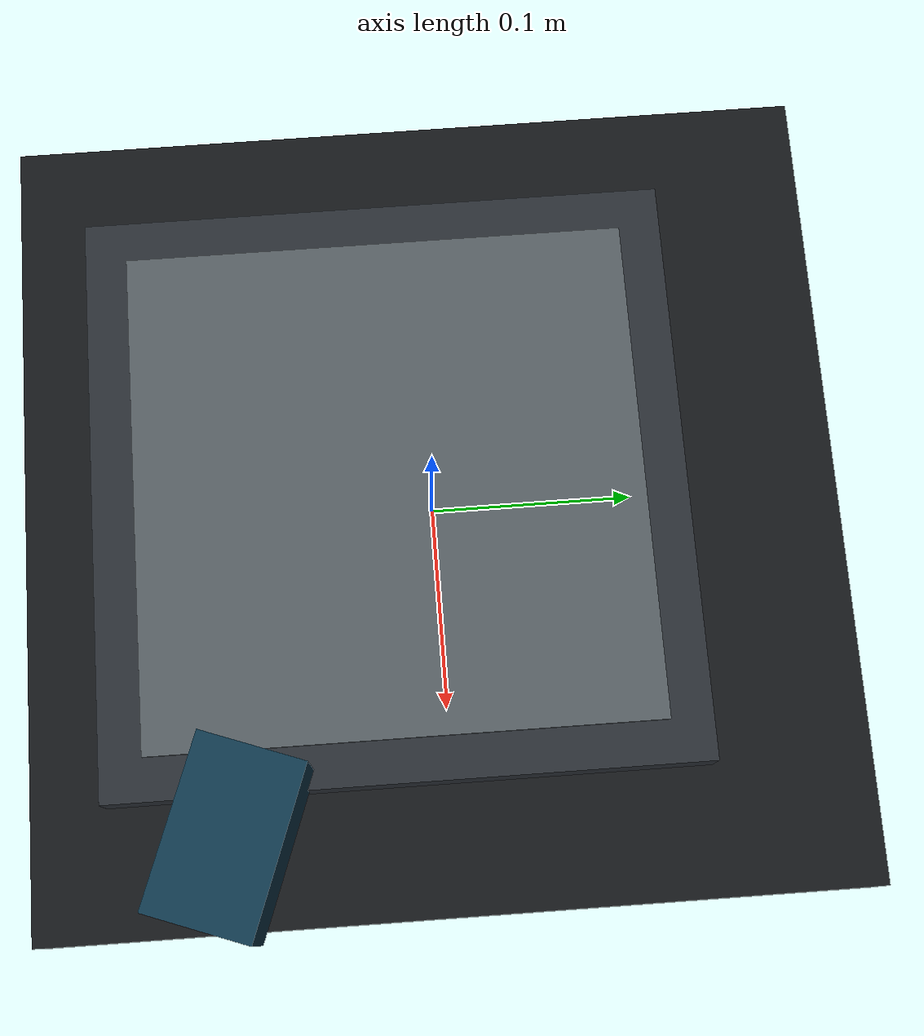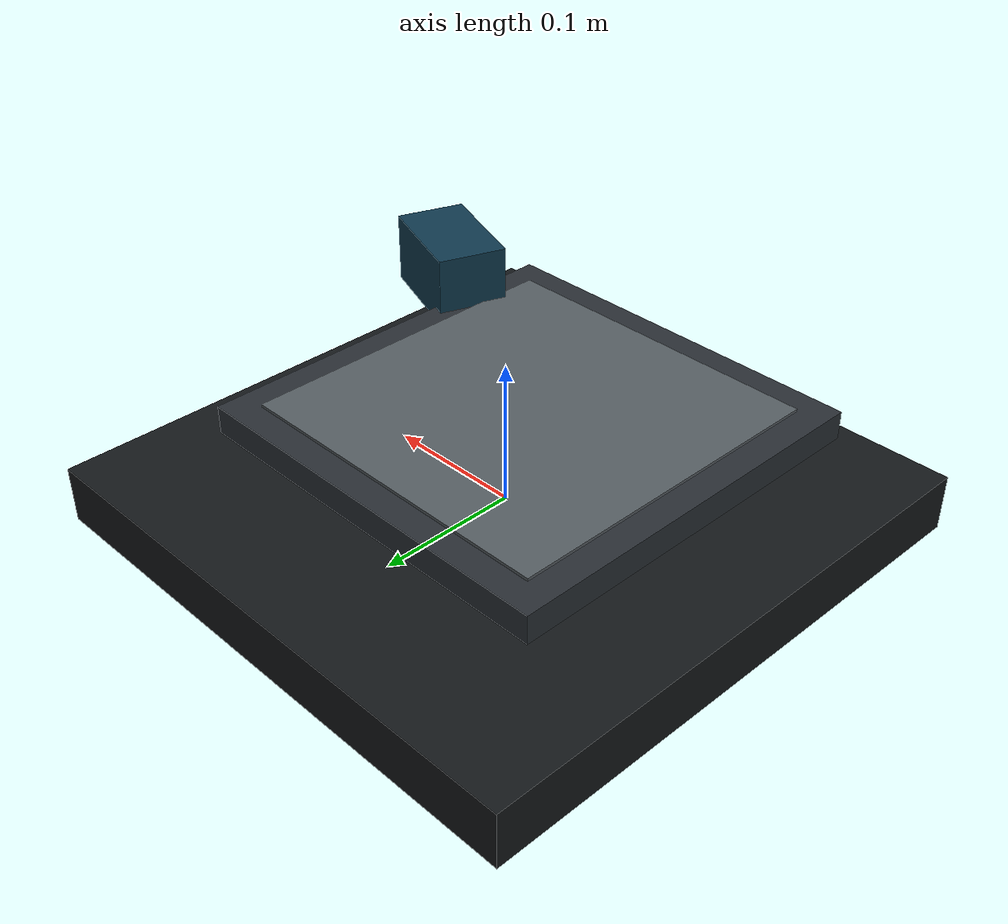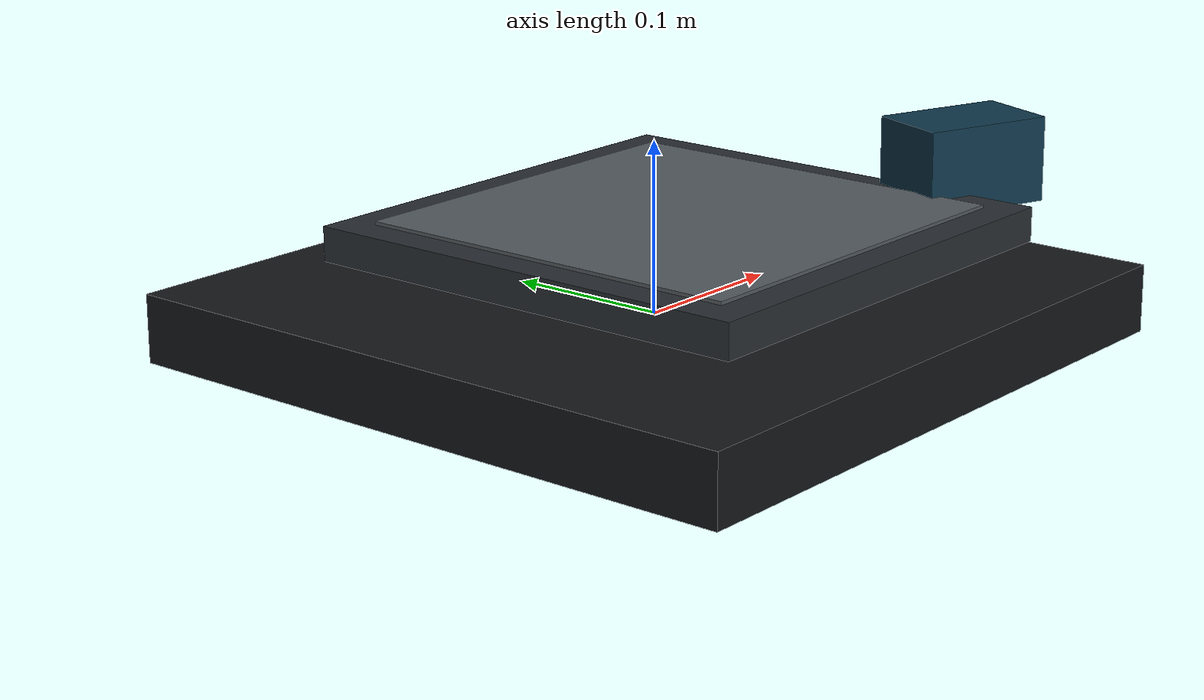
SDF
<?xml version="1.0"?>
<sdf version="1.6">
  <model name="prusa_mk4_2">
    <static>true</static>
    <link name="link">
      <collision name="base">
        <pose>0 0 0 0 0 0</pose>
        <geometry><box><size>0.40 0.40 0.04</size></box></geometry>
      </collision>
      <visual name="base">
        <pose>0 0 0 0 0 0</pose>
        <geometry><box><size>0.40 0.40 0.04</size></box></geometry>
        <material><ambient>0.08 0.09 0.10 1</ambient><diffuse>0.08 0.09 0.10 1</diffuse></material>
      </visual>

      <collision name="bed">
        <!-- Keep support contacts across the completed gears' triangulated faces. -->
        <max_contacts>256</max_contacts>
        <pose>0 -0.02 0.05 0 0 0</pose>
        <geometry><box><size>0.28 0.28 0.02</size></box></geometry>
      </collision>
      <visual name="bed">
        <pose>0 -0.02 0.05 0 0 0</pose>
        <geometry><box><size>0.28 0.28 0.02</size></box></geometry>
        <material><ambient>0.16 0.18 0.20 1</ambient><diffuse>0.16 0.18 0.20 1</diffuse></material>
      </visual>
      <visual name="bed_print_area">
        <pose>0 -0.02 0.061 0 0 0</pose>
        <geometry><box><size>0.24 0.24 0.002</size></box></geometry>
        <material><ambient>0.33 0.36 0.38 1</ambient><diffuse>0.33 0.36 0.38 1</diffuse></material>
      </visual>

      <visual name="display">
        <pose>0.16 -0.10 0.075 0 0 -0.35</pose>
        <geometry><box><size>0.08 0.05 0.05</size></box></geometry>
        <material><ambient>0.06 0.22 0.30 1</ambient><diffuse>0.06 0.22 0.30 1</diffuse></material>
      </visual>
    </link>
  </model>
</sdf>
